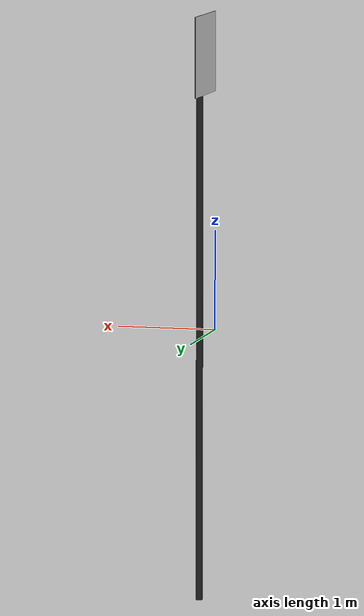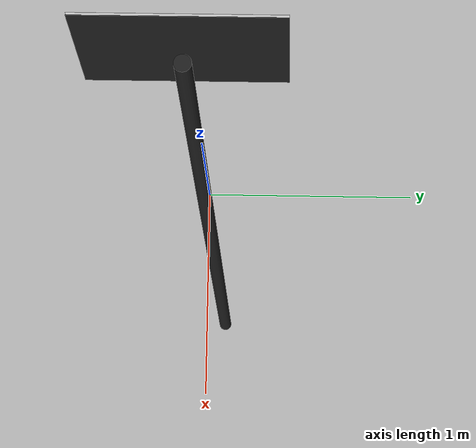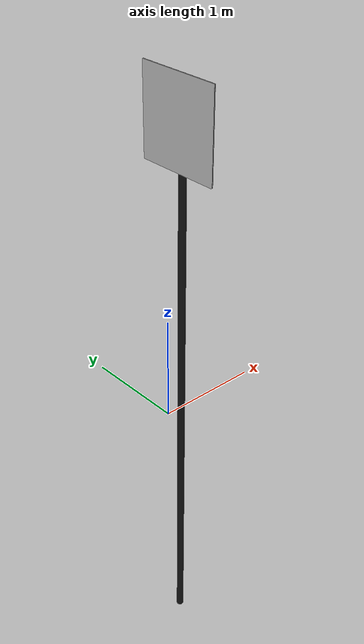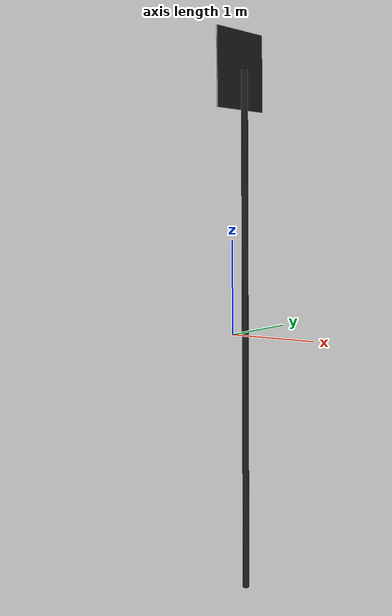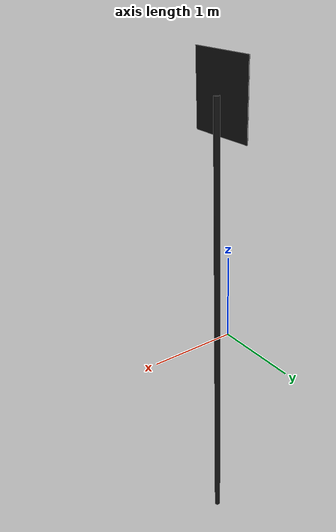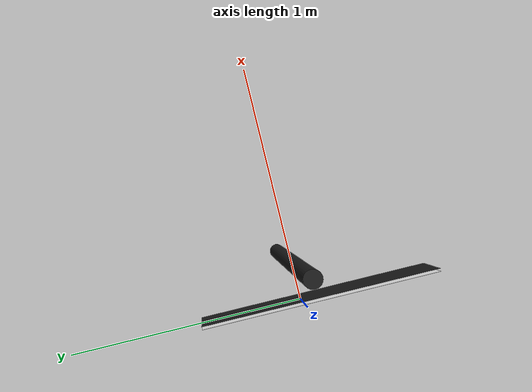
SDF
<?xml version='1.0'?>
<sdf version='1.7'>
  <model name='gostraightsign'>
    <link name='link_3'>
      <pose>0.1 0 2.75 0 -1.5707 0</pose>
      <self_collide>0</self_collide>
      <enable_wind>0</enable_wind>
      <kinematic>0</kinematic>
      <inertial>
        <inertia>
          <ixx>0</ixx>
          <ixy>0</ixy>
          <ixz>0</ixz>
          <iyy>0</iyy>
          <iyz>0</iyz>
          <izz>0</izz>
        </inertia>
        <mass>0</mass>
        <pose>0 0 0 0 -0 0</pose>
      </inertial>
      <gravity>1</gravity>
      <visual name='visual'>
        <pose>0 0 0 0 1.5707 0</pose>
        <geometry>
          <box>
            <size>0.001 0.8 0.8</size>
          </box>
        </geometry>
        <material>
          <script>
            <uri>file://media/materials/scripts/turn_right.material</uri>
            <name>go_straight/material</name>
          </script>
          <shader type='pixel'>
            <normal_map>__default__</normal_map>
          </shader>
          <ambient>1 1 1 1</ambient>
          <diffuse>1 1 1 1</diffuse>
          <specular>0.03 0.03 0.03 1</specular>
          <emissive>0 0 0 1</emissive>
          <lighting>0</lighting>
        </material>
        <cast_shadows>1</cast_shadows>
        <transparency>0</transparency>
      </visual>
      <collision name='collision'>
        <laser_retro>0</laser_retro>
        <max_contacts>10</max_contacts>
        <pose>0 0 0 0 -0 0</pose>
        <geometry>
          <box>
            <size>0.001 0.8 0.8</size>
          </box>
        </geometry>
        <surface>
          <friction>
            <ode>
              <mu>1</mu>
              <mu2>1</mu2>
              <fdir1>0 0 0</fdir1>
              <slip1>0</slip1>
              <slip2>0</slip2>
            </ode>
            <torsional>
              <coefficient>1</coefficient>
              <patch_radius>0</patch_radius>
              <surface_radius>0</surface_radius>
              <use_patch_radius>1</use_patch_radius>
              <ode>
                <slip>0</slip>
              </ode>
            </torsional>
          </friction>
          <bounce>
            <restitution_coefficient>0</restitution_coefficient>
            <threshold>1e+06</threshold>
          </bounce>
          <contact>
            <collide_without_contact>0</collide_without_contact>
            <collide_without_contact_bitmask>1</collide_without_contact_bitmask>
            <collide_bitmask>1</collide_bitmask>
            <ode>
              <soft_cfm>0</soft_cfm>
              <soft_erp>0.2</soft_erp>
              <kp>1e+13</kp>
              <kd>1</kd>
              <max_vel>0.01</max_vel>
              <min_depth>0</min_depth>
            </ode>
            <bullet>
              <split_impulse>1</split_impulse>
              <split_impulse_penetration_threshold>-0.01</split_impulse_penetration_threshold>
              <soft_cfm>0</soft_cfm>
              <soft_erp>0.2</soft_erp>
              <kp>1e+13</kp>
              <kd>1</kd>
            </bullet>
          </contact>
        </surface>
      </collision>
    </link>
    <link name='link_0'>
      <inertial>
        <mass>0.0276171</mass>
        <inertia>
          <ixx>0.0566012</ixx>
          <ixy>0</ixy>
          <ixz>0</ixz>
          <iyy>0.0566012</iyy>
          <iyz>0</iyz>
          <izz>1.919e-05</izz>
        </inertia>
        <pose>0 0 0 0 -0 0</pose>
      </inertial>
      <pose>0.16 0 0 0 -0 0</pose>
      <gravity>1</gravity>
      <self_collide>0</self_collide>
      <kinematic>0</kinematic>
      <enable_wind>0</enable_wind>
      <visual name='visual'>
        <pose>0 0 0 0 -0 0</pose>
        <geometry>
          <cylinder>
            <radius>0.035</radius>
            <length>5.5</length>
          </cylinder>
        </geometry>
        <material>
          <lighting>1</lighting>
          <script>
            <uri>file://media/materials/scripts/gazebo.material</uri>
            <name>Gazebo/Black</name>
          </script>
          <shader type='pixel'>
            <normal_map>__default__</normal_map>
          </shader>
          <emissive>0 0 0 1</emissive>
          <ambient>0.3 0.3 0.3 1</ambient>
          <diffuse>0.7 0.7 0.7 1</diffuse>
          <specular>0.01 0.01 0.01 1</specular>
        </material>
        <transparency>0</transparency>
        <cast_shadows>1</cast_shadows>
      </visual>
      <collision name='collision'>
        <laser_retro>0</laser_retro>
        <max_contacts>10</max_contacts>
        <pose>0 0 0 0 -0 0</pose>
        <geometry>
          <cylinder>
            <radius>0.037282</radius>
            <length>4.95881</length>
          </cylinder>
        </geometry>
        <surface>
          <friction>
            <ode>
              <mu>1</mu>
              <mu2>1</mu2>
              <fdir1>0 0 0</fdir1>
              <slip1>0</slip1>
              <slip2>0</slip2>
            </ode>
            <torsional>
              <coefficient>1</coefficient>
              <patch_radius>0</patch_radius>
              <surface_radius>0</surface_radius>
              <use_patch_radius>1</use_patch_radius>
              <ode>
                <slip>0</slip>
              </ode>
            </torsional>
          </friction>
          <bounce>
            <restitution_coefficient>0</restitution_coefficient>
            <threshold>1e+06</threshold>
          </bounce>
          <contact>
            <collide_without_contact>0</collide_without_contact>
            <collide_without_contact_bitmask>1</collide_without_contact_bitmask>
            <collide_bitmask>1</collide_bitmask>
            <ode>
              <soft_cfm>0</soft_cfm>
              <soft_erp>0.2</soft_erp>
              <kp>1e+13</kp>
              <kd>1</kd>
              <max_vel>0.01</max_vel>
              <min_depth>0</min_depth>
            </ode>
            <bullet>
              <split_impulse>1</split_impulse>
              <split_impulse_penetration_threshold>-0.01</split_impulse_penetration_threshold>
              <soft_cfm>0</soft_cfm>
              <soft_erp>0.2</soft_erp>
              <kp>1e+13</kp>
              <kd>1</kd>
            </bullet>
          </contact>
        </surface>
      </collision>
    </link>
    <link name='link_3_clone'>
      <pose>0.110001 0 2.75 0 -1.5707 0</pose>
      <self_collide>0</self_collide>
      <enable_wind>0</enable_wind>
      <kinematic>0</kinematic>
      <inertial>
        <inertia>
          <ixx>0</ixx>
          <ixy>0</ixy>
          <ixz>0</ixz>
          <iyy>0</iyy>
          <iyz>0</iyz>
          <izz>0</izz>
        </inertia>
        <mass>0</mass>
        <pose>0 0 0 0 -0 0</pose>
      </inertial>
      <gravity>1</gravity>
      <visual name='visual'>
        <pose>0 0 0 0 1.5707 0</pose>
        <geometry>
          <box>
            <size>0.001 0.8 0.8</size>
          </box>
        </geometry>
        <material>
          <script>
            <uri>file://media/materials/scripts/turn_right.material</uri>
            <name>Gazebo/Black</name>
          </script>
          <shader type='pixel'>
            <normal_map>__default__</normal_map>
          </shader>
          <ambient>1 1 1 1</ambient>
          <diffuse>1 1 1 1</diffuse>
          <specular>0.03 0.03 0.03 1</specular>
          <emissive>0 0 0 1</emissive>
          <lighting>0</lighting>
        </material>
        <cast_shadows>1</cast_shadows>
        <transparency>0</transparency>
      </visual>
      <collision name='collision'>
        <laser_retro>0</laser_retro>
        <max_contacts>10</max_contacts>
        <pose>0 0 0 0 -0 0</pose>
        <geometry>
          <box>
            <size>0.001 0.8 0.8</size>
          </box>
        </geometry>
        <surface>
          <friction>
            <ode>
              <mu>1</mu>
              <mu2>1</mu2>
              <fdir1>0 0 0</fdir1>
              <slip1>0</slip1>
              <slip2>0</slip2>
            </ode>
            <torsional>
              <coefficient>1</coefficient>
              <patch_radius>0</patch_radius>
              <surface_radius>0</surface_radius>
              <use_patch_radius>1</use_patch_radius>
              <ode>
                <slip>0</slip>
              </ode>
            </torsional>
          </friction>
          <bounce>
            <restitution_coefficient>0</restitution_coefficient>
            <threshold>1e+06</threshold>
          </bounce>
          <contact>
            <collide_without_contact>0</collide_without_contact>
            <collide_without_contact_bitmask>1</collide_without_contact_bitmask>
            <collide_bitmask>1</collide_bitmask>
            <ode>
              <soft_cfm>0</soft_cfm>
              <soft_erp>0.2</soft_erp>
              <kp>1e+13</kp>
              <kd>1</kd>
              <max_vel>0.01</max_vel>
              <min_depth>0</min_depth>
            </ode>
            <bullet>
              <split_impulse>1</split_impulse>
              <split_impulse_penetration_threshold>-0.01</split_impulse_penetration_threshold>
              <soft_cfm>0</soft_cfm>
              <soft_erp>0.2</soft_erp>
              <kp>1e+13</kp>
              <kd>1</kd>
            </bullet>
          </contact>
        </surface>
      </collision>
    </link>
    <joint name='link_0_JOINT_0' type='revolute'>
      <parent>link_0</parent>
      <child>link_3</child>
      <pose>0 0 0 0 -0 0</pose>
      <axis>
        <xyz>1 0 0</xyz>
        <limit>
          <lower>-1.79769e+308</lower>
          <upper>1.79769e+308</upper>
          <effort>-1</effort>
          <velocity>-1</velocity>
        </limit>
        <dynamics>
          <spring_reference>0</spring_reference>
          <spring_stiffness>0</spring_stiffness>
          <damping>0</damping>
          <friction>0</friction>
        </dynamics>
      </axis>
      <physics>
        <ode>
          <limit>
            <cfm>0</cfm>
            <erp>0.2</erp>
          </limit>
          <suspension>
            <cfm>0</cfm>
            <erp>0.2</erp>
          </suspension>
        </ode>
      </physics>
    </joint>
    <joint name='link_0_JOINT_1' type='revolute'>
      <parent>link_0</parent>
      <child>link_3_clone</child>
      <pose>0 0 0 0 -0 0</pose>
      <axis>
        <xyz>1 0 0</xyz>
        <limit>
          <lower>-1.79769e+308</lower>
          <upper>1.79769e+308</upper>
          <effort>-1</effort>
          <velocity>-1</velocity>
        </limit>
        <dynamics>
          <spring_reference>0</spring_reference>
          <spring_stiffness>0</spring_stiffness>
          <damping>0</damping>
          <friction>0</friction>
        </dynamics>
      </axis>
      <physics>
        <ode>
          <limit>
            <cfm>0</cfm>
            <erp>0.2</erp>
          </limit>
          <suspension>
            <cfm>0</cfm>
            <erp>0.2</erp>
          </suspension>
        </ode>
      </physics>
    </joint>
    <joint name='link_3_JOINT_0' type='revolute'>
      <parent>link_3</parent>
      <child>link_3_clone</child>
      <pose>0 0 0 0 -0 0</pose>
      <axis>
        <xyz>1 0 0</xyz>
        <limit>
          <lower>-1.79769e+308</lower>
          <upper>1.79769e+308</upper>
          <effort>-1</effort>
          <velocity>-1</velocity>
        </limit>
        <dynamics>
          <spring_reference>0</spring_reference>
          <spring_stiffness>0</spring_stiffness>
          <damping>0</damping>
          <friction>0</friction>
        </dynamics>
      </axis>
      <physics>
        <ode>
          <limit>
            <cfm>0</cfm>
            <erp>0.2</erp>
          </limit>
          <suspension>
            <cfm>0</cfm>
            <erp>0.2</erp>
          </suspension>
        </ode>
      </physics>
    </joint>
    <static>1</static>
    <allow_auto_disable>1</allow_auto_disable>
  </model>
</sdf>
